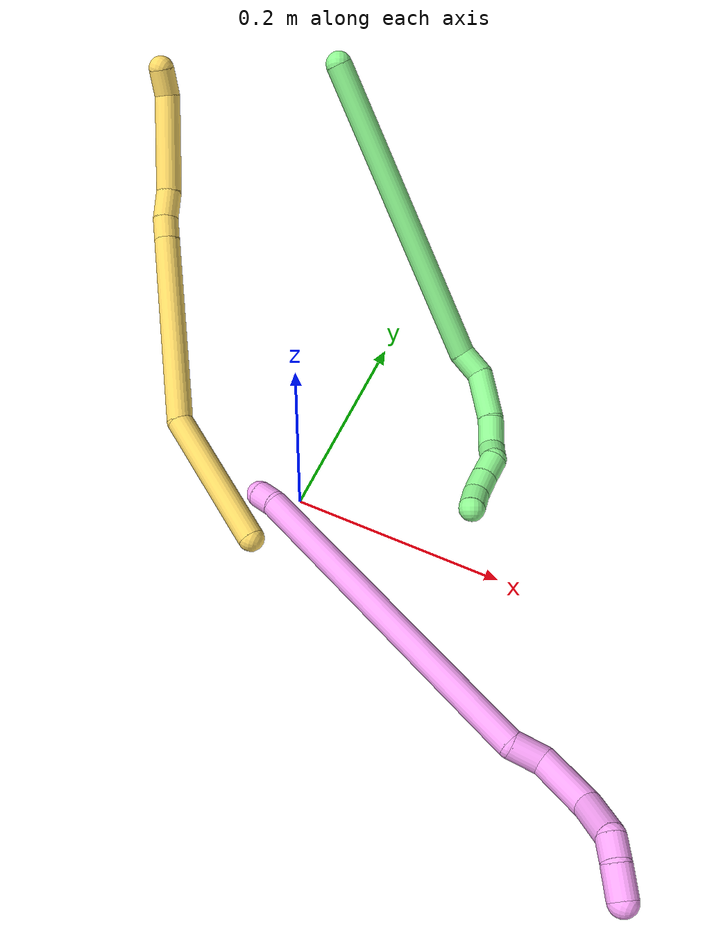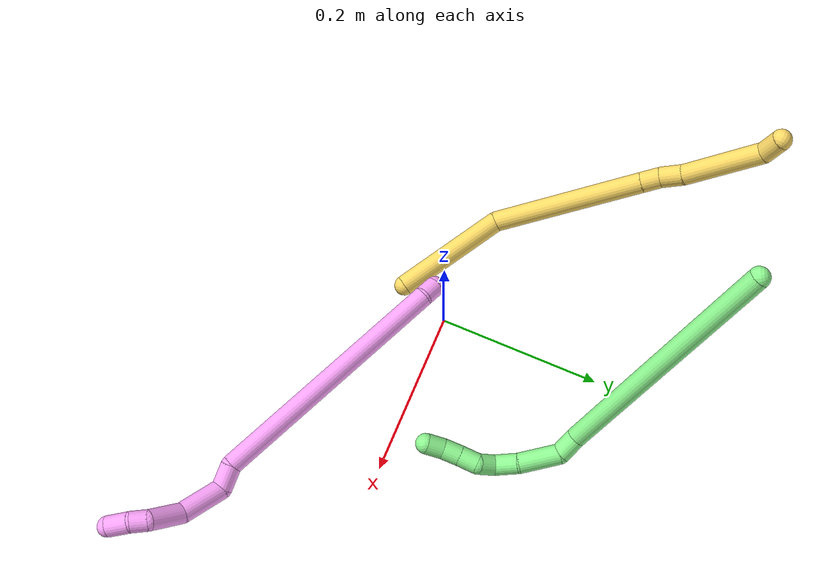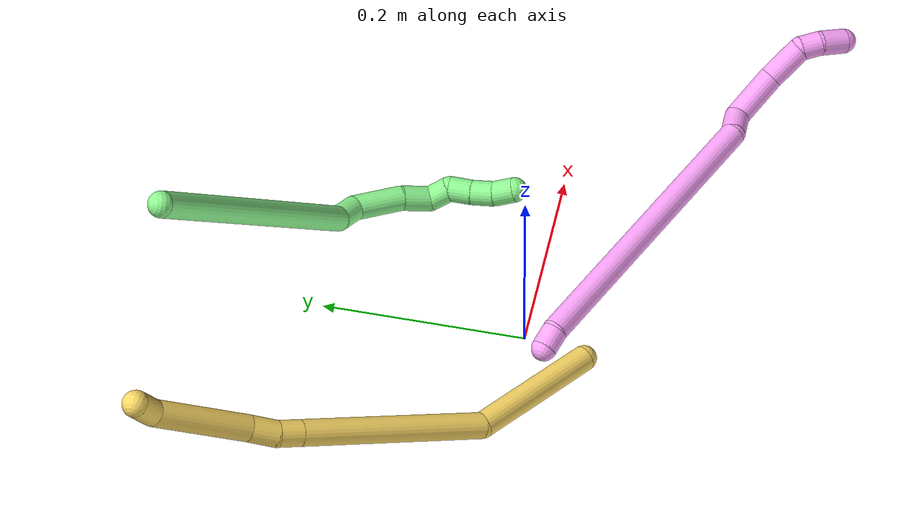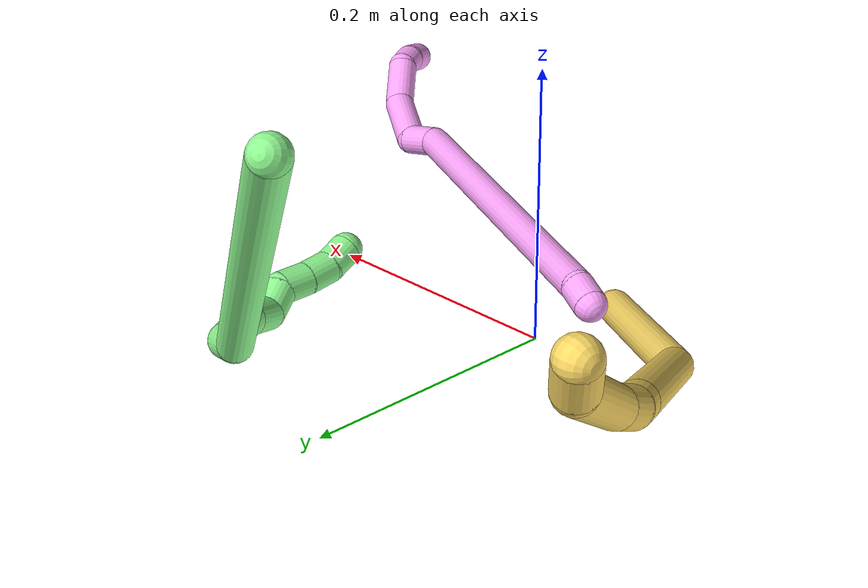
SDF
<sdf version="1.7">
 <world name="default">
  <model name="photoneo_s_sensor">
   <static>1</static>
   <pose>0 0 2 1.57079 1.57079 3.14159</pose>
   <link name="link">
    <inertial><mass>0.1</mass></inertial>
    <sensor name="sensor" type="depth">
     <update_rate>30</update_rate>
     <camera>
      <horizontal_fov>1.22</horizontal_fov>
      <image><width>1920</width><height>1200</height><format>B8G8R8</format></image>
      <clip><near>0.1</near><far>4</far></clip>
      <depth_camera><output>points</output></depth_camera>
     </camera>
     <plugin name="camera_plugin" filename="libgazebo_ros_depth_camera.so">
      <baseline>0.2</baseline>
      <alwaysOn>1</alwaysOn>
      <updateRate>0.0</updateRate>
      <cameraName>camera_ir</cameraName>
      <imageTopicName>/camera/color/image_raw</imageTopicName>
      <cameraInfoTopicName>/camera/color/camera_info</cameraInfoTopicName>
      <depthImageTopicName>/camera/depth/image_raw</depthImageTopicName>
      <depthImageCameraInfoTopicName>/camera/depth/camera_info</depthImageCameraInfoTopicName>
      <pointCloudTopicName>/camera/depth/points</pointCloudTopicName>
      <frameName>fr_optical</frameName>
      <pointCloudCutoff>0.1</pointCloudCutoff>
      <pointCloudCutoffMax>2.0</pointCloudCutoffMax>
      <distortionK1>0</distortionK1>
      <distortionK2>0</distortionK2>
      <distortionK3>0</distortionK3>
      <distortionT1>0</distortionT1>
      <distortionT2>0</distortionT2>
      <CxPrime>0</CxPrime>
      <Cx>0</Cx>
      <Cy>0</Cy>
      <focalLength>0</focalLength>
      <hackBaseline>0</hackBaseline>
     </plugin>
    </sensor>
   </link>
  </model>
  <model name="bin">
   <static>1</static>
   <link name="bottom">
    <collision name="collision-bottom">
     <pose>0 0 -0.01 0 -0 0</pose>
     <geometry><box><size>0.8 0.6 0.02</size></box></geometry>
     <surface>
      <friction><ode><mu>100</mu><mu2>100</mu2></ode></friction>
      <contact><collide_bitmask>65535</collide_bitmask></contact>
     </surface>
    </collision>
   </link>
   <link name="west_wall">
    <collision name="collision-west_wall">
     <pose>-0.41 0 0.1 0 -0 0</pose>
     <geometry><box><size>0.02 0.6 0.2</size></box></geometry>
     <surface>
      <friction><ode><mu>100</mu><mu2>100</mu2></ode></friction>
      <contact><collide_bitmask>65535</collide_bitmask></contact>
     </surface>
    </collision>
   </link>
   <link name="east_wall">
    <collision name="collision-east_wall">
     <pose>0.41 0 0.1 0 -0 0</pose>
     <geometry><box><size>0.02 0.6 0.2</size></box></geometry>
     <surface>
      <friction><ode><mu>100</mu><mu2>100</mu2></ode></friction>
      <contact><collide_bitmask>65535</collide_bitmask></contact>
     </surface>
    </collision>
   </link>
   <link name="south_wall">
    <collision name="collision-south_wall">
     <pose>0 -0.31 0.1 0 -0 0</pose>
     <geometry><box><size>0.8 0.02 0.2</size></box></geometry>
     <surface>
      <friction><ode><mu>100</mu><mu2>100</mu2></ode></friction>
      <contact><collide_bitmask>65535</collide_bitmask></contact>
     </surface>
    </collision>
   </link>
   <link name="north_wall">
    <collision name="collision-north_wall">
     <pose>0 0.31 0.1 0 -0 0</pose>
     <geometry><box><size>0.8 0.02 0.2</size></box></geometry>
     <surface>
      <friction><ode><mu>100</mu><mu2>100</mu2></ode></friction>
      <contact><collide_bitmask>65535</collide_bitmask></contact>
     </surface>
    </collision>
   </link>
  </model>
  <model name="4">
   <static>0</static>
   <link name="4">
    <collision name="collision-cylinder-e_1_1_4">
     <pose>0.000123 -0.001131 0.010297 0.10939 0.011835 0.000648</pose>
     <geometry><cylinder><radius>0.0125</radius><length>0.020719</length></cylinder></geometry>
     <surface>
      <friction><ode><mu>1.16</mu><mu2>1.16</mu2><slip1>0</slip1><slip2>0</slip2></ode></friction>
      <contact><ode><kp>1e+06</kp><kd>1</kd><max_vel>0</max_vel><min_depth>0.001</min_depth></ode></contact>
     </surface>
    </collision>
    <visual name="visual-cylinder-e_1_1_4">
     <pose>0.000123 -0.001131 0.010297 0.10939 0.011835 0.000648</pose>
     <geometry><cylinder><radius>0.0125</radius><length>0.020719</length></cylinder></geometry>
     <material><ambient>1 0.65098 0.996078 1</ambient></material>
    </visual>
    <collision name="collision-cylinder-e_2_4_5">
     <pose>0.047271 -0.016168 0.165369 0.095763 0.312721 0.015108</pose>
     <geometry><cylinder><radius>0.0125</radius><length>0.305709</length></cylinder></geometry>
     <surface>
      <friction><ode><mu>1.16</mu><mu2>1.16</mu2><slip1>0</slip1><slip2>0</slip2></ode></friction>
      <contact><ode><kp>1e+06</kp><kd>1</kd><max_vel>0</max_vel><min_depth>0.001</min_depth></ode></contact>
     </surface>
    </collision>
    <visual name="visual-cylinder-e_2_4_5">
     <pose>0.047271 -0.016168 0.165369 0.095763 0.312721 0.015108</pose>
     <geometry><cylinder><radius>0.0125</radius><length>0.305709</length></cylinder></geometry>
     <material><ambient>1 0.65098 0.996078 1</ambient></material>
    </visual>
    <collision name="collision-cylinder-e_3_5_6">
     <pose>0.099423 -0.02458 0.322995 -0.404044 0.351557 -0.072723</pose>
     <geometry><cylinder><radius>0.0125</radius><length>0.029774</length></cylinder></geometry>
     <surface>
      <friction><ode><mu>1.16</mu><mu2>1.16</mu2><slip1>0</slip1><slip2>0</slip2></ode></friction>
      <contact><ode><kp>1e+06</kp><kd>1</kd><max_vel>0</max_vel><min_depth>0.001</min_depth></ode></contact>
     </surface>
    </collision>
    <visual name="visual-cylinder-e_3_5_6">
     <pose>0.099423 -0.02458 0.322995 -0.404044 0.351557 -0.072723</pose>
     <geometry><cylinder><radius>0.0125</radius><length>0.029774</length></cylinder></geometry>
     <material><ambient>1 0.65098 0.996078 1</ambient></material>
    </visual>
    <collision name="collision-cylinder-e_4_6_7">
     <pose>0.105993 -0.026537 0.361658 0.281059 0.0537 0.007598</pose>
     <geometry><cylinder><radius>0.0125</radius><length>0.053809</length></cylinder></geometry>
     <surface>
      <friction><ode><mu>1.16</mu><mu2>1.16</mu2><slip1>0</slip1><slip2>0</slip2></ode></friction>
      <contact><ode><kp>1e+06</kp><kd>1</kd><max_vel>0</max_vel><min_depth>0.001</min_depth></ode></contact>
     </surface>
    </collision>
    <visual name="visual-cylinder-e_4_6_7">
     <pose>0.105993 -0.026537 0.361658 0.281059 0.0537 0.007598</pose>
     <geometry><cylinder><radius>0.0125</radius><length>0.053809</length></cylinder></geometry>
     <material><ambient>1 0.65098 0.996078 1</ambient></material>
    </visual>
    <collision name="collision-cylinder-e_5_7_8">
     <pose>0.102937 -0.045524 0.404447 0.596758 -0.215848 -0.066621</pose>
     <geometry><cylinder><radius>0.0125</radius><length>0.042026</length></cylinder></geometry>
     <surface>
      <friction><ode><mu>1.16</mu><mu2>1.16</mu2><slip1>0</slip1><slip2>0</slip2></ode></friction>
      <contact><ode><kp>1e+06</kp><kd>1</kd><max_vel>0</max_vel><min_depth>0.001</min_depth></ode></contact>
     </surface>
    </collision>
    <visual name="visual-cylinder-e_5_7_8">
     <pose>0.102937 -0.045524 0.404447 0.596758 -0.215848 -0.066621</pose>
     <geometry><cylinder><radius>0.0125</radius><length>0.042026</length></cylinder></geometry>
     <material><ambient>1 0.65098 0.996078 1</ambient></material>
    </visual>
    <collision name="collision-cylinder-e_6_8_9">
     <pose>0.102112 -0.063755 0.428294 0.772687 0.365871 0.150231</pose>
     <geometry><cylinder><radius>0.0125</radius><length>0.020547</length></cylinder></geometry>
     <surface>
      <friction><ode><mu>1.16</mu><mu2>1.16</mu2><slip1>0</slip1><slip2>0</slip2></ode></friction>
      <contact><ode><kp>1e+06</kp><kd>1</kd><max_vel>0</max_vel><min_depth>0.001</min_depth></ode></contact>
     </surface>
    </collision>
    <visual name="visual-cylinder-e_6_8_9">
     <pose>0.102112 -0.063755 0.428294 0.772687 0.365871 0.150231</pose>
     <geometry><cylinder><radius>0.0125</radius><length>0.020547</length></cylinder></geometry>
     <material><ambient>1 0.65098 0.996078 1</ambient></material>
    </visual>
    <collision name="collision-cylinder-e_7_9_2">
     <pose>0.114091 -0.077609 0.443393 0.715801 0.650687 0.251002</pose>
     <geometry><cylinder><radius>0.0125</radius><length>0.027416</length></cylinder></geometry>
     <surface>
      <friction><ode><mu>1.16</mu><mu2>1.16</mu2><slip1>0</slip1><slip2>0</slip2></ode></friction>
      <contact><ode><kp>1e+06</kp><kd>1</kd><max_vel>0</max_vel><min_depth>0.001</min_depth></ode></contact>
     </surface>
    </collision>
    <visual name="visual-cylinder-e_7_9_2">
     <pose>0.114091 -0.077609 0.443393 0.715801 0.650687 0.251002</pose>
     <geometry><cylinder><radius>0.0125</radius><length>0.027416</length></cylinder></geometry>
     <material><ambient>1 0.65098 0.996078 1</ambient></material>
    </visual>
    <collision name="collision-sphere-2">
     <pose>0.122394 -0.084766 0.451623 0 -0 0</pose>
     <geometry><sphere><radius>0.0125</radius></sphere></geometry>
     <surface>
      <friction><ode><mu>1.16</mu><mu2>1.16</mu2><slip1>0</slip1><slip2>0</slip2></ode></friction>
      <contact><ode><kp>1e+06</kp><kd>1</kd><max_vel>0</max_vel><min_depth>0.001</min_depth></ode></contact>
     </surface>
    </collision>
    <visual name="visual-sphere-2">
     <pose>0.122394 -0.084766 0.451623 0 -0 0</pose>
     <geometry><sphere><radius>0.0125</radius></sphere></geometry>
     <material><ambient>1 0.65098 0.996078 1</ambient></material>
    </visual>
    <collision name="collision-sphere-9">
     <pose>0.105787 -0.070452 0.435163 0 -0 0</pose>
     <geometry><sphere><radius>0.0125</radius></sphere></geometry>
     <surface>
      <friction><ode><mu>1.16</mu><mu2>1.16</mu2><slip1>0</slip1><slip2>0</slip2></ode></friction>
      <contact><ode><kp>1e+06</kp><kd>1</kd><max_vel>0</max_vel><min_depth>0.001</min_depth></ode></contact>
     </surface>
    </collision>
    <visual name="visual-sphere-9">
     <pose>0.105787 -0.070452 0.435163 0 -0 0</pose>
     <geometry><sphere><radius>0.0125</radius></sphere></geometry>
     <material><ambient>1 0.65098 0.996078 1</ambient></material>
    </visual>
    <collision name="collision-sphere-4">
     <pose>0.000245 -0.002262 0.020594 0 -0 0</pose>
     <geometry><sphere><radius>0.0125</radius></sphere></geometry>
     <surface>
      <friction><ode><mu>1.16</mu><mu2>1.16</mu2><slip1>0</slip1><slip2>0</slip2></ode></friction>
      <contact><ode><kp>1e+06</kp><kd>1</kd><max_vel>0</max_vel><min_depth>0.001</min_depth></ode></contact>
     </surface>
    </collision>
    <visual name="visual-sphere-4">
     <pose>0.000245 -0.002262 0.020594 0 -0 0</pose>
     <geometry><sphere><radius>0.0125</radius></sphere></geometry>
     <material><ambient>1 0.65098 0.996078 1</ambient></material>
    </visual>
    <collision name="collision-sphere-1">
     <geometry><sphere><radius>0.0125</radius></sphere></geometry>
     <surface>
      <friction><ode><mu>1.16</mu><mu2>1.16</mu2><slip1>0</slip1><slip2>0</slip2></ode></friction>
      <contact><ode><kp>1e+06</kp><kd>1</kd><max_vel>0</max_vel><min_depth>0.001</min_depth></ode></contact>
     </surface>
    </collision>
    <visual name="visual-sphere-1">
     <geometry><sphere><radius>0.0125</radius></sphere></geometry>
     <material><ambient>1 0.65098 0.996078 1</ambient></material>
    </visual>
    <collision name="collision-sphere-8">
     <pose>0.098436 -0.057058 0.421425 0 -0 0</pose>
     <geometry><sphere><radius>0.0125</radius></sphere></geometry>
     <surface>
      <friction><ode><mu>1.16</mu><mu2>1.16</mu2><slip1>0</slip1><slip2>0</slip2></ode></friction>
      <contact><ode><kp>1e+06</kp><kd>1</kd><max_vel>0</max_vel><min_depth>0.001</min_depth></ode></contact>
     </surface>
    </collision>
    <visual name="visual-sphere-8">
     <pose>0.098436 -0.057058 0.421425 0 -0 0</pose>
     <geometry><sphere><radius>0.0125</radius></sphere></geometry>
     <material><ambient>1 0.65098 0.996078 1</ambient></material>
    </visual>
    <collision name="collision-sphere-5">
     <pose>0.094296 -0.030075 0.310143 0 -0 0</pose>
     <geometry><sphere><radius>0.0125</radius></sphere></geometry>
     <surface>
      <friction><ode><mu>1.16</mu><mu2>1.16</mu2><slip1>0</slip1><slip2>0</slip2></ode></friction>
      <contact><ode><kp>1e+06</kp><kd>1</kd><max_vel>0</max_vel><min_depth>0.001</min_depth></ode></contact>
     </surface>
    </collision>
    <visual name="visual-sphere-5">
     <pose>0.094296 -0.030075 0.310143 0 -0 0</pose>
     <geometry><sphere><radius>0.0125</radius></sphere></geometry>
     <material><ambient>1 0.65098 0.996078 1</ambient></material>
    </visual>
    <collision name="collision-sphere-6">
     <pose>0.104549 -0.019085 0.335846 0 -0 0</pose>
     <geometry><sphere><radius>0.0125</radius></sphere></geometry>
     <surface>
      <friction><ode><mu>1.16</mu><mu2>1.16</mu2><slip1>0</slip1><slip2>0</slip2></ode></friction>
      <contact><ode><kp>1e+06</kp><kd>1</kd><max_vel>0</max_vel><min_depth>0.001</min_depth></ode></contact>
     </surface>
    </collision>
    <visual name="visual-sphere-6">
     <pose>0.104549 -0.019085 0.335846 0 -0 0</pose>
     <geometry><sphere><radius>0.0125</radius></sphere></geometry>
     <material><ambient>1 0.65098 0.996078 1</ambient></material>
    </visual>
    <collision name="collision-sphere-7">
     <pose>0.107437 -0.033989 0.387469 0 -0 0</pose>
     <geometry><sphere><radius>0.0125</radius></sphere></geometry>
     <surface>
      <friction><ode><mu>1.16</mu><mu2>1.16</mu2><slip1>0</slip1><slip2>0</slip2></ode></friction>
      <contact><ode><kp>1e+06</kp><kd>1</kd><max_vel>0</max_vel><min_depth>0.001</min_depth></ode></contact>
     </surface>
    </collision>
    <visual name="visual-sphere-7">
     <pose>0.107437 -0.033989 0.387469 0 -0 0</pose>
     <geometry><sphere><radius>0.0125</radius></sphere></geometry>
     <material><ambient>1 0.65098 0.996078 1</ambient></material>
    </visual>
    <inertial>
     <pose>0.065338 -0.024954 0.235597 0 -0 0</pose>
     <mass>0.5</mass>
     <inertia>
      <ixx>0.002352</ixx>
      <ixy>0</ixy>
      <ixz>0</ixz>
      <iyy>0.00244</iyy>
      <iyz>0</iyz>
      <izz>-0.000476</izz>
     </inertia>
    </inertial>
   </link>
   <pose>-0.028582 -0.024413 0.028404 -0.825301 1.15132 -1.11376</pose>
  </model>
  <model name="5">
   <static>0</static>
   <link name="5">
    <collision name="collision-cylinder-e_1_1_4">
     <pose>-0.020047 0.029572 0.059124 -0.463778 -0.294433 0.070004</pose>
     <geometry><cylinder><radius>0.0125</radius><length>0.13816</length></cylinder></geometry>
     <surface>
      <friction><ode><mu>1.16</mu><mu2>1.16</mu2><slip1>0</slip1><slip2>0</slip2></ode></friction>
      <contact><ode><kp>1e+06</kp><kd>1</kd><max_vel>0</max_vel><min_depth>0.001</min_depth></ode></contact>
     </surface>
    </collision>
    <visual name="visual-cylinder-e_1_1_4">
     <pose>-0.020047 0.029572 0.059124 -0.463778 -0.294433 0.070004</pose>
     <geometry><cylinder><radius>0.0125</radius><length>0.13816</length></cylinder></geometry>
     <material><ambient>1 0.858824 0.4 1</ambient></material>
    </visual>
    <collision name="collision-cylinder-e_2_4_5">
     <pose>-0.078978 0.127842 0.167241 -0.951302 -0.431821 0.224997</pose>
     <geometry><cylinder><radius>0.0125</radius><length>0.185814</length></cylinder></geometry>
     <surface>
      <friction><ode><mu>1.16</mu><mu2>1.16</mu2><slip1>0</slip1><slip2>0</slip2></ode></friction>
      <contact><ode><kp>1e+06</kp><kd>1</kd><max_vel>0</max_vel><min_depth>0.001</min_depth></ode></contact>
     </surface>
    </collision>
    <visual name="visual-cylinder-e_2_4_5">
     <pose>-0.078978 0.127842 0.167241 -0.951302 -0.431821 0.224997</pose>
     <geometry><cylinder><radius>0.0125</radius><length>0.185814</length></cylinder></geometry>
     <material><ambient>1 0.858824 0.4 1</ambient></material>
    </visual>
    <collision name="collision-cylinder-e_3_5_6">
     <pose>-0.122721 0.205127 0.222356 -0.951342 -0.4318 0.224997</pose>
     <geometry><cylinder><radius>0.0125</radius><length>0.023222</length></cylinder></geometry>
     <surface>
      <friction><ode><mu>1.16</mu><mu2>1.16</mu2><slip1>0</slip1><slip2>0</slip2></ode></friction>
      <contact><ode><kp>1e+06</kp><kd>1</kd><max_vel>0</max_vel><min_depth>0.001</min_depth></ode></contact>
     </surface>
    </collision>
    <visual name="visual-cylinder-e_3_5_6">
     <pose>-0.122721 0.205127 0.222356 -0.951342 -0.4318 0.224997</pose>
     <geometry><cylinder><radius>0.0125</radius><length>0.023222</length></cylinder></geometry>
     <material><ambient>1 0.858824 0.4 1</ambient></material>
    </visual>
    <collision name="collision-cylinder-e_4_6_7">
     <pose>-0.133434 0.225517 0.233066 -1.2001 -0.433 0.298739</pose>
     <geometry><cylinder><radius>0.0125</radius><length>0.027904</length></cylinder></geometry>
     <surface>
      <friction><ode><mu>1.16</mu><mu2>1.16</mu2><slip1>0</slip1><slip2>0</slip2></ode></friction>
      <contact><ode><kp>1e+06</kp><kd>1</kd><max_vel>0</max_vel><min_depth>0.001</min_depth></ode></contact>
     </surface>
    </collision>
    <visual name="visual-cylinder-e_4_6_7">
     <pose>-0.133434 0.225517 0.233066 -1.2001 -0.433 0.298739</pose>
     <geometry><cylinder><radius>0.0125</radius><length>0.027904</length></cylinder></geometry>
     <material><ambient>1 0.858824 0.4 1</ambient></material>
    </visual>
    <collision name="collision-cylinder-e_5_7_8">
     <pose>-0.153548 0.279114 0.257945 -1.1188 -0.297804 0.187301</pose>
     <geometry><cylinder><radius>0.0125</radius><length>0.097195</length></cylinder></geometry>
     <surface>
      <friction><ode><mu>1.16</mu><mu2>1.16</mu2><slip1>0</slip1><slip2>0</slip2></ode></friction>
      <contact><ode><kp>1e+06</kp><kd>1</kd><max_vel>0</max_vel><min_depth>0.001</min_depth></ode></contact>
     </surface>
    </collision>
    <visual name="visual-cylinder-e_5_7_8">
     <pose>-0.153548 0.279114 0.257945 -1.1188 -0.297804 0.187301</pose>
     <geometry><cylinder><radius>0.0125</radius><length>0.097195</length></cylinder></geometry>
     <material><ambient>1 0.858824 0.4 1</ambient></material>
    </visual>
    <collision name="collision-cylinder-e_6_8_2">
     <pose>-0.165226 0.333544 0.283288 -1.19047 0.187465 -0.127146</pose>
     <geometry><cylinder><radius>0.0125</radius><length>0.027705</length></cylinder></geometry>
     <surface>
      <friction><ode><mu>1.16</mu><mu2>1.16</mu2><slip1>0</slip1><slip2>0</slip2></ode></friction>
      <contact><ode><kp>1e+06</kp><kd>1</kd><max_vel>0</max_vel><min_depth>0.001</min_depth></ode></contact>
     </surface>
    </collision>
    <visual name="visual-cylinder-e_6_8_2">
     <pose>-0.165226 0.333544 0.283288 -1.19047 0.187465 -0.127146</pose>
     <geometry><cylinder><radius>0.0125</radius><length>0.027705</length></cylinder></geometry>
     <material><ambient>1 0.858824 0.4 1</ambient></material>
    </visual>
    <collision name="collision-sphere-2">
     <pose>-0.162644 0.346182 0.288341 0 -0 0</pose>
     <geometry><sphere><radius>0.0125</radius></sphere></geometry>
     <surface>
      <friction><ode><mu>1.16</mu><mu2>1.16</mu2><slip1>0</slip1><slip2>0</slip2></ode></friction>
      <contact><ode><kp>1e+06</kp><kd>1</kd><max_vel>0</max_vel><min_depth>0.001</min_depth></ode></contact>
     </surface>
    </collision>
    <visual name="visual-sphere-2">
     <pose>-0.162644 0.346182 0.288341 0 -0 0</pose>
     <geometry><sphere><radius>0.0125</radius></sphere></geometry>
     <material><ambient>1 0.858824 0.4 1</ambient></material>
    </visual>
    <collision name="collision-sphere-4">
     <pose>-0.040094 0.059144 0.118249 0 -0 0</pose>
     <geometry><sphere><radius>0.0125</radius></sphere></geometry>
     <surface>
      <friction><ode><mu>1.16</mu><mu2>1.16</mu2><slip1>0</slip1><slip2>0</slip2></ode></friction>
      <contact><ode><kp>1e+06</kp><kd>1</kd><max_vel>0</max_vel><min_depth>0.001</min_depth></ode></contact>
     </surface>
    </collision>
    <visual name="visual-sphere-4">
     <pose>-0.040094 0.059144 0.118249 0 -0 0</pose>
     <geometry><sphere><radius>0.0125</radius></sphere></geometry>
     <material><ambient>1 0.858824 0.4 1</ambient></material>
    </visual>
    <collision name="collision-sphere-1">
     <geometry><sphere><radius>0.0125</radius></sphere></geometry>
     <surface>
      <friction><ode><mu>1.16</mu><mu2>1.16</mu2><slip1>0</slip1><slip2>0</slip2></ode></friction>
      <contact><ode><kp>1e+06</kp><kd>1</kd><max_vel>0</max_vel><min_depth>0.001</min_depth></ode></contact>
     </surface>
    </collision>
    <visual name="visual-sphere-1">
     <geometry><sphere><radius>0.0125</radius></sphere></geometry>
     <material><ambient>1 0.858824 0.4 1</ambient></material>
    </visual>
    <collision name="collision-sphere-8">
     <pose>-0.167808 0.320907 0.278236 0 -0 0</pose>
     <geometry><sphere><radius>0.0125</radius></sphere></geometry>
     <surface>
      <friction><ode><mu>1.16</mu><mu2>1.16</mu2><slip1>0</slip1><slip2>0</slip2></ode></friction>
      <contact><ode><kp>1e+06</kp><kd>1</kd><max_vel>0</max_vel><min_depth>0.001</min_depth></ode></contact>
     </surface>
    </collision>
    <visual name="visual-sphere-8">
     <pose>-0.167808 0.320907 0.278236 0 -0 0</pose>
     <geometry><sphere><radius>0.0125</radius></sphere></geometry>
     <material><ambient>1 0.858824 0.4 1</ambient></material>
    </visual>
    <collision name="collision-sphere-5">
     <pose>-0.117862 0.196541 0.216233 0 -0 0</pose>
     <geometry><sphere><radius>0.0125</radius></sphere></geometry>
     <surface>
      <friction><ode><mu>1.16</mu><mu2>1.16</mu2><slip1>0</slip1><slip2>0</slip2></ode></friction>
      <contact><ode><kp>1e+06</kp><kd>1</kd><max_vel>0</max_vel><min_depth>0.001</min_depth></ode></contact>
     </surface>
    </collision>
    <visual name="visual-sphere-5">
     <pose>-0.117862 0.196541 0.216233 0 -0 0</pose>
     <geometry><sphere><radius>0.0125</radius></sphere></geometry>
     <material><ambient>1 0.858824 0.4 1</ambient></material>
    </visual>
    <collision name="collision-sphere-6">
     <pose>-0.12758 0.213713 0.228478 0 -0 0</pose>
     <geometry><sphere><radius>0.0125</radius></sphere></geometry>
     <surface>
      <friction><ode><mu>1.16</mu><mu2>1.16</mu2><slip1>0</slip1><slip2>0</slip2></ode></friction>
      <contact><ode><kp>1e+06</kp><kd>1</kd><max_vel>0</max_vel><min_depth>0.001</min_depth></ode></contact>
     </surface>
    </collision>
    <visual name="visual-sphere-6">
     <pose>-0.12758 0.213713 0.228478 0 -0 0</pose>
     <geometry><sphere><radius>0.0125</radius></sphere></geometry>
     <material><ambient>1 0.858824 0.4 1</ambient></material>
    </visual>
    <collision name="collision-sphere-7">
     <pose>-0.139289 0.237321 0.237654 0 -0 0</pose>
     <geometry><sphere><radius>0.0125</radius></sphere></geometry>
     <surface>
      <friction><ode><mu>1.16</mu><mu2>1.16</mu2><slip1>0</slip1><slip2>0</slip2></ode></friction>
      <contact><ode><kp>1e+06</kp><kd>1</kd><max_vel>0</max_vel><min_depth>0.001</min_depth></ode></contact>
     </surface>
    </collision>
    <visual name="visual-sphere-7">
     <pose>-0.139289 0.237321 0.237654 0 -0 0</pose>
     <geometry><sphere><radius>0.0125</radius></sphere></geometry>
     <material><ambient>1 0.858824 0.4 1</ambient></material>
    </visual>
    <inertial>
     <pose>-0.087039 0.150532 0.167662 0 -0 0</pose>
     <mass>0.5</mass>
     <inertia>
      <ixx>0.000904</ixx>
      <ixy>0</ixy>
      <ixz>0</ixz>
      <iyy>0.00076</iyy>
      <iyz>0</iyz>
      <izz>-0.000233</izz>
     </inertia>
    </inertial>
   </link>
   <pose>-0.020101 -0.061571 0.011655 1.60979 -0.594006 -1.66883</pose>
  </model>
  <model name="13">
   <static>0</static>
   <link name="13">
    <collision name="collision-cylinder-e_1_1_4">
     <pose>0.079814 0.032155 -0.12457 -2.88898 0.555273 -2.30328</pose>
     <geometry><cylinder><radius>0.0125</radius><length>0.3028</length></cylinder></geometry>
     <surface>
      <friction><ode><mu>1.16</mu><mu2>1.16</mu2><slip1>0</slip1><slip2>0</slip2></ode></friction>
      <contact><ode><kp>1e+06</kp><kd>1</kd><max_vel>0</max_vel><min_depth>0.001</min_depth></ode></contact>
     </surface>
    </collision>
    <visual name="visual-cylinder-e_1_1_4">
     <pose>0.079814 0.032155 -0.12457 -2.88898 0.555273 -2.30328</pose>
     <geometry><cylinder><radius>0.0125</radius><length>0.3028</length></cylinder></geometry>
     <material><ambient>0.564706 0.984314 0.572549 1</ambient></material>
    </visual>
    <collision name="collision-cylinder-e_2_4_5">
     <pose>0.167797 0.06115 -0.259713 2.85113 0.637192 2.30682</pose>
     <geometry><cylinder><radius>0.0125</radius><length>0.027459</length></cylinder></geometry>
     <surface>
      <friction><ode><mu>1.16</mu><mu2>1.16</mu2><slip1>0</slip1><slip2>0</slip2></ode></friction>
      <contact><ode><kp>1e+06</kp><kd>1</kd><max_vel>0</max_vel><min_depth>0.001</min_depth></ode></contact>
     </surface>
    </collision>
    <visual name="visual-cylinder-e_2_4_5">
     <pose>0.167797 0.06115 -0.259713 2.85113 0.637192 2.30682</pose>
     <geometry><cylinder><radius>0.0125</radius><length>0.027459</length></cylinder></geometry>
     <material><ambient>0.564706 0.984314 0.572549 1</ambient></material>
    </visual>
    <collision name="collision-cylinder-e_3_5_6">
     <pose>0.177406 0.050324 -0.294098 2.83015 0.057527 0.362506</pose>
     <geometry><cylinder><radius>0.0125</radius><length>0.050113</length></cylinder></geometry>
     <surface>
      <friction><ode><mu>1.16</mu><mu2>1.16</mu2><slip1>0</slip1><slip2>0</slip2></ode></friction>
      <contact><ode><kp>1e+06</kp><kd>1</kd><max_vel>0</max_vel><min_depth>0.001</min_depth></ode></contact>
     </surface>
    </collision>
    <visual name="visual-cylinder-e_3_5_6">
     <pose>0.177406 0.050324 -0.294098 2.83015 0.057527 0.362506</pose>
     <geometry><cylinder><radius>0.0125</radius><length>0.050113</length></cylinder></geometry>
     <material><ambient>0.564706 0.984314 0.572549 1</ambient></material>
    </visual>
    <collision name="collision-cylinder-e_4_6_7">
     <pose>0.17796 0.040745 -0.33287 3.01434 -0.05873 -0.863994</pose>
     <geometry><cylinder><radius>0.0125</radius><length>0.030217</length></cylinder></geometry>
     <surface>
      <friction><ode><mu>1.16</mu><mu2>1.16</mu2><slip1>0</slip1><slip2>0</slip2></ode></friction>
      <contact><ode><kp>1e+06</kp><kd>1</kd><max_vel>0</max_vel><min_depth>0.001</min_depth></ode></contact>
     </surface>
    </collision>
    <visual name="visual-cylinder-e_4_6_7">
     <pose>0.17796 0.040745 -0.33287 3.01434 -0.05873 -0.863994</pose>
     <geometry><cylinder><radius>0.0125</radius><length>0.030217</length></cylinder></geometry>
     <material><ambient>0.564706 0.984314 0.572549 1</ambient></material>
    </visual>
    <collision name="collision-cylinder-e_5_7_8">
     <pose>0.173474 0.030524 -0.354731 2.26397 -0.32174 -0.665772</pose>
     <geometry><cylinder><radius>0.0125</radius><length>0.022765</length></cylinder></geometry>
     <surface>
      <friction><ode><mu>1.16</mu><mu2>1.16</mu2><slip1>0</slip1><slip2>0</slip2></ode></friction>
      <contact><ode><kp>1e+06</kp><kd>1</kd><max_vel>0</max_vel><min_depth>0.001</min_depth></ode></contact>
     </surface>
    </collision>
    <visual name="visual-cylinder-e_5_7_8">
     <pose>0.173474 0.030524 -0.354731 2.26397 -0.32174 -0.665772</pose>
     <geometry><cylinder><radius>0.0125</radius><length>0.022765</length></cylinder></geometry>
     <material><ambient>0.564706 0.984314 0.572549 1</ambient></material>
    </visual>
    <collision name="collision-cylinder-e_6_8_9">
     <pose>0.163441 0.020006 -0.37076 2.90385 -0.600508 -2.40527</pose>
     <geometry><cylinder><radius>0.0125</radius><length>0.02277</length></cylinder></geometry>
     <surface>
      <friction><ode><mu>1.16</mu><mu2>1.16</mu2><slip1>0</slip1><slip2>0</slip2></ode></friction>
      <contact><ode><kp>1e+06</kp><kd>1</kd><max_vel>0</max_vel><min_depth>0.001</min_depth></ode></contact>
     </surface>
    </collision>
    <visual name="visual-cylinder-e_6_8_9">
     <pose>0.163441 0.020006 -0.37076 2.90385 -0.600508 -2.40527</pose>
     <geometry><cylinder><radius>0.0125</radius><length>0.02277</length></cylinder></geometry>
     <material><ambient>0.564706 0.984314 0.572549 1</ambient></material>
    </visual>
    <collision name="collision-cylinder-e_7_9_10">
     <pose>0.150846 0.014454 -0.388675 2.77834 -0.580221 -2.03859</pose>
     <geometry><cylinder><radius>0.0125</radius><length>0.022478</length></cylinder></geometry>
     <surface>
      <friction><ode><mu>1.16</mu><mu2>1.16</mu2><slip1>0</slip1><slip2>0</slip2></ode></friction>
      <contact><ode><kp>1e+06</kp><kd>1</kd><max_vel>0</max_vel><min_depth>0.001</min_depth></ode></contact>
     </surface>
    </collision>
    <visual name="visual-cylinder-e_7_9_10">
     <pose>0.150846 0.014454 -0.388675 2.77834 -0.580221 -2.03859</pose>
     <geometry><cylinder><radius>0.0125</radius><length>0.022478</length></cylinder></geometry>
     <material><ambient>0.564706 0.984314 0.572549 1</ambient></material>
    </visual>
    <collision name="collision-cylinder-e_8_10_2">
     <pose>0.139508 0.005407 -0.404883 2.48613 -0.505145 -1.29859</pose>
     <geometry><cylinder><radius>0.0125</radius><length>0.021398</length></cylinder></geometry>
     <surface>
      <friction><ode><mu>1.16</mu><mu2>1.16</mu2><slip1>0</slip1><slip2>0</slip2></ode></friction>
      <contact><ode><kp>1e+06</kp><kd>1</kd><max_vel>0</max_vel><min_depth>0.001</min_depth></ode></contact>
     </surface>
    </collision>
    <visual name="visual-cylinder-e_8_10_2">
     <pose>0.139508 0.005407 -0.404883 2.48613 -0.505145 -1.29859</pose>
     <geometry><cylinder><radius>0.0125</radius><length>0.021398</length></cylinder></geometry>
     <material><ambient>0.564706 0.984314 0.572549 1</ambient></material>
    </visual>
    <collision name="collision-sphere-2">
     <pose>0.13433 -0.000299 -0.412306 0 -0 0</pose>
     <geometry><sphere><radius>0.0125</radius></sphere></geometry>
     <surface>
      <friction><ode><mu>1.16</mu><mu2>1.16</mu2><slip1>0</slip1><slip2>0</slip2></ode></friction>
      <contact><ode><kp>1e+06</kp><kd>1</kd><max_vel>0</max_vel><min_depth>0.001</min_depth></ode></contact>
     </surface>
    </collision>
    <visual name="visual-sphere-2">
     <pose>0.13433 -0.000299 -0.412306 0 -0 0</pose>
     <geometry><sphere><radius>0.0125</radius></sphere></geometry>
     <material><ambient>0.564706 0.984314 0.572549 1</ambient></material>
    </visual>
    <collision name="collision-sphere-10">
     <pose>0.144685 0.011114 -0.397461 0 -0 0</pose>
     <geometry><sphere><radius>0.0125</radius></sphere></geometry>
     <surface>
      <friction><ode><mu>1.16</mu><mu2>1.16</mu2><slip1>0</slip1><slip2>0</slip2></ode></friction>
      <contact><ode><kp>1e+06</kp><kd>1</kd><max_vel>0</max_vel><min_depth>0.001</min_depth></ode></contact>
     </surface>
    </collision>
    <visual name="visual-sphere-10">
     <pose>0.144685 0.011114 -0.397461 0 -0 0</pose>
     <geometry><sphere><radius>0.0125</radius></sphere></geometry>
     <material><ambient>0.564706 0.984314 0.572549 1</ambient></material>
    </visual>
    <collision name="collision-sphere-9">
     <pose>0.157008 0.017794 -0.379889 0 -0 0</pose>
     <geometry><sphere><radius>0.0125</radius></sphere></geometry>
     <surface>
      <friction><ode><mu>1.16</mu><mu2>1.16</mu2><slip1>0</slip1><slip2>0</slip2></ode></friction>
      <contact><ode><kp>1e+06</kp><kd>1</kd><max_vel>0</max_vel><min_depth>0.001</min_depth></ode></contact>
     </surface>
    </collision>
    <visual name="visual-sphere-9">
     <pose>0.157008 0.017794 -0.379889 0 -0 0</pose>
     <geometry><sphere><radius>0.0125</radius></sphere></geometry>
     <material><ambient>0.564706 0.984314 0.572549 1</ambient></material>
    </visual>
    <collision name="collision-sphere-4">
     <pose>0.159629 0.064311 -0.24914 0 -0 0</pose>
     <geometry><sphere><radius>0.0125</radius></sphere></geometry>
     <surface>
      <friction><ode><mu>1.16</mu><mu2>1.16</mu2><slip1>0</slip1><slip2>0</slip2></ode></friction>
      <contact><ode><kp>1e+06</kp><kd>1</kd><max_vel>0</max_vel><min_depth>0.001</min_depth></ode></contact>
     </surface>
    </collision>
    <visual name="visual-sphere-4">
     <pose>0.159629 0.064311 -0.24914 0 -0 0</pose>
     <geometry><sphere><radius>0.0125</radius></sphere></geometry>
     <material><ambient>0.564706 0.984314 0.572549 1</ambient></material>
    </visual>
    <collision name="collision-sphere-1">
     <geometry><sphere><radius>0.0125</radius></sphere></geometry>
     <surface>
      <friction><ode><mu>1.16</mu><mu2>1.16</mu2><slip1>0</slip1><slip2>0</slip2></ode></friction>
      <contact><ode><kp>1e+06</kp><kd>1</kd><max_vel>0</max_vel><min_depth>0.001</min_depth></ode></contact>
     </surface>
    </collision>
    <visual name="visual-sphere-1">
     <geometry><sphere><radius>0.0125</radius></sphere></geometry>
     <material><ambient>0.564706 0.984314 0.572549 1</ambient></material>
    </visual>
    <collision name="collision-sphere-8">
     <pose>0.169874 0.022218 -0.361631 0 -0 0</pose>
     <geometry><sphere><radius>0.0125</radius></sphere></geometry>
     <surface>
      <friction><ode><mu>1.16</mu><mu2>1.16</mu2><slip1>0</slip1><slip2>0</slip2></ode></friction>
      <contact><ode><kp>1e+06</kp><kd>1</kd><max_vel>0</max_vel><min_depth>0.001</min_depth></ode></contact>
     </surface>
    </collision>
    <visual name="visual-sphere-8">
     <pose>0.169874 0.022218 -0.361631 0 -0 0</pose>
     <geometry><sphere><radius>0.0125</radius></sphere></geometry>
     <material><ambient>0.564706 0.984314 0.572549 1</ambient></material>
    </visual>
    <collision name="collision-sphere-5">
     <pose>0.175965 0.05799 -0.270286 0 -0 0</pose>
     <geometry><sphere><radius>0.0125</radius></sphere></geometry>
     <surface>
      <friction><ode><mu>1.16</mu><mu2>1.16</mu2><slip1>0</slip1><slip2>0</slip2></ode></friction>
      <contact><ode><kp>1e+06</kp><kd>1</kd><max_vel>0</max_vel><min_depth>0.001</min_depth></ode></contact>
     </surface>
    </collision>
    <visual name="visual-sphere-5">
     <pose>0.175965 0.05799 -0.270286 0 -0 0</pose>
     <geometry><sphere><radius>0.0125</radius></sphere></geometry>
     <material><ambient>0.564706 0.984314 0.572549 1</ambient></material>
    </visual>
    <collision name="collision-sphere-6">
     <pose>0.178847 0.042659 -0.317909 0 -0 0</pose>
     <geometry><sphere><radius>0.0125</radius></sphere></geometry>
     <surface>
      <friction><ode><mu>1.16</mu><mu2>1.16</mu2><slip1>0</slip1><slip2>0</slip2></ode></friction>
      <contact><ode><kp>1e+06</kp><kd>1</kd><max_vel>0</max_vel><min_depth>0.001</min_depth></ode></contact>
     </surface>
    </collision>
    <visual name="visual-sphere-6">
     <pose>0.178847 0.042659 -0.317909 0 -0 0</pose>
     <geometry><sphere><radius>0.0125</radius></sphere></geometry>
     <material><ambient>0.564706 0.984314 0.572549 1</ambient></material>
    </visual>
    <collision name="collision-sphere-7">
     <pose>0.177073 0.038831 -0.347831 0 -0 0</pose>
     <geometry><sphere><radius>0.0125</radius></sphere></geometry>
     <surface>
      <friction><ode><mu>1.16</mu><mu2>1.16</mu2><slip1>0</slip1><slip2>0</slip2></ode></friction>
      <contact><ode><kp>1e+06</kp><kd>1</kd><max_vel>0</max_vel><min_depth>0.001</min_depth></ode></contact>
     </surface>
    </collision>
    <visual name="visual-sphere-7">
     <pose>0.177073 0.038831 -0.347831 0 -0 0</pose>
     <geometry><sphere><radius>0.0125</radius></sphere></geometry>
     <material><ambient>0.564706 0.984314 0.572549 1</ambient></material>
    </visual>
    <inertial>
     <pose>0.114179 0.03352 -0.207131 0 -0 0</pose>
     <mass>0.5</mass>
     <inertia>
      <ixx>-0.002769</ixx>
      <ixy>0</ixy>
      <ixz>0</ixz>
      <iyy>0.000254</iyy>
      <iyz>0</iyz>
      <izz>-0.001743</izz>
     </inertia>
    </inertial>
   </link>
   <pose>-0.105306 0.312147 0.249594 -1.11345 0.349187 0.597124</pose>
  </model>
 </world>
</sdf>
